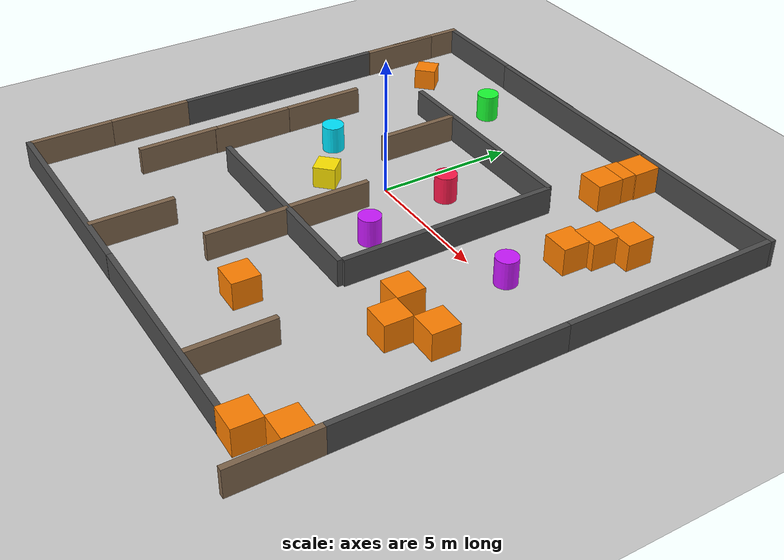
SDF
<sdf version='1.12'>
  <world name='empty'>
    <physics name='1ms' type='ignored'>
      <max_step_size>0.001</max_step_size>
      <real_time_factor>1</real_time_factor>
      <real_time_update_rate>1000</real_time_update_rate>
    </physics>
    <plugin name='gz::sim::systems::Physics' filename='gz-sim-physics-system'/>
    <plugin name='gz::sim::systems::UserCommands' filename='gz-sim-user-commands-system'/>
    <plugin name='gz::sim::systems::SceneBroadcaster' filename='gz-sim-scene-broadcaster-system'/>
    <plugin name='gz::sim::systems::Contact' filename='gz-sim-contact-system'/>
    <gravity>0 0 -9.8000000000000007</gravity>
    <magnetic_field>5.5644999999999998e-06 2.2875799999999999e-05 -4.2388400000000002e-05</magnetic_field>
    <atmosphere type='adiabatic'/>
    <scene>
      <ambient>0.400000006 0.400000006 0.400000006 1</ambient>
      <background>0.699999988 0.699999988 0.699999988 1</background>
      <shadows>true</shadows>
    </scene>
    <model name='ground_plane'>
      <static>true</static>
      <link name='link'>
        <collision name='collision'>
          <geometry>
            <plane>
              <normal>0 0 1</normal>
              <size>100 100</size>
            </plane>
          </geometry>
          <surface>
            <friction>
              <ode/>
            </friction>
            <bounce/>
            <contact/>
          </surface>
        </collision>
        <visual name='visual'>
          <geometry>
            <plane>
              <normal>0 0 1</normal>
              <size>100 100</size>
            </plane>
          </geometry>
          <material>
            <ambient>0.800000012 0.800000012 0.800000012 1</ambient>
            <diffuse>0.800000012 0.800000012 0.800000012 1</diffuse>
            <specular>0.800000012 0.800000012 0.800000012 1</specular>
          </material>
        </visual>
        <pose>0 0 0 0 0 0</pose>
        <inertial>
          <pose>0 0 0 0 0 0</pose>
          <mass>1</mass>
          <inertia>
            <ixx>1</ixx>
            <ixy>0</ixy>
            <ixz>0</ixz>
            <iyy>1</iyy>
            <iyz>0</iyz>
            <izz>1</izz>
          </inertia>
        </inertial>
        <enable_wind>false</enable_wind>
      </link>
      <pose>0 0 0 0 0 0</pose>
      <self_collide>false</self_collide>
    </model>
    <model name='wall_north'>
      <static>true</static>
      <pose>0 4 0.5 0 0 0</pose>
      <link name='link'>
        <collision name='collision'>
          <geometry>
            <box>
              <size>8 0.20000000000000001 1</size>
            </box>
          </geometry>
          <surface>
            <friction>
              <ode/>
            </friction>
            <bounce/>
            <contact/>
          </surface>
        </collision>
        <visual name='visual'>
          <geometry>
            <box>
              <size>8 0.20000000000000001 1</size>
            </box>
          </geometry>
          <material>
            <ambient>0.300000012 0.300000012 0.300000012 1</ambient>
            <diffuse>0.300000012 0.300000012 0.300000012 1</diffuse>
          </material>
        </visual>
        <pose>0 0 0 0 0 0</pose>
        <inertial>
          <pose>0 0 0 0 0 0</pose>
          <mass>1</mass>
          <inertia>
            <ixx>1</ixx>
            <ixy>0</ixy>
            <ixz>0</ixz>
            <iyy>1</iyy>
            <iyz>0</iyz>
            <izz>1</izz>
          </inertia>
        </inertial>
        <enable_wind>false</enable_wind>
      </link>
      <self_collide>false</self_collide>
    </model>
    <model name='wall_south'>
      <static>true</static>
      <pose>0 -4.0923056602478027 0.5 0 0 0</pose>
      <link name='link'>
        <collision name='collision'>
          <geometry>
            <box>
              <size>8 0.20000000000000001 1</size>
            </box>
          </geometry>
          <surface>
            <friction>
              <ode/>
            </friction>
            <bounce/>
            <contact/>
          </surface>
        </collision>
        <visual name='visual'>
          <geometry>
            <box>
              <size>8 0.20000000000000001 1</size>
            </box>
          </geometry>
          <material>
            <ambient>0.300000012 0.300000012 0.300000012 1</ambient>
            <diffuse>0.300000012 0.300000012 0.300000012 1</diffuse>
          </material>
        </visual>
        <pose>0 0 0 0 0 0</pose>
        <inertial>
          <pose>0 0 0 0 0 0</pose>
          <mass>1</mass>
          <inertia>
            <ixx>1</ixx>
            <ixy>0</ixy>
            <ixz>0</ixz>
            <iyy>1</iyy>
            <iyz>0</iyz>
            <izz>1</izz>
          </inertia>
        </inertial>
        <enable_wind>false</enable_wind>
      </link>
      <self_collide>false</self_collide>
    </model>
    <model name='wall_east'>
      <static>true</static>
      <pose>4 0 0.5 0 0 1.5708000000000009</pose>
      <link name='link'>
        <collision name='collision'>
          <geometry>
            <box>
              <size>8 0.20000000000000001 1</size>
            </box>
          </geometry>
          <surface>
            <friction>
              <ode/>
            </friction>
            <bounce/>
            <contact/>
          </surface>
        </collision>
        <visual name='visual'>
          <geometry>
            <box>
              <size>8 0.20000000000000001 1</size>
            </box>
          </geometry>
          <material>
            <ambient>0.300000012 0.300000012 0.300000012 1</ambient>
            <diffuse>0.300000012 0.300000012 0.300000012 1</diffuse>
          </material>
        </visual>
        <pose>0 0 0 0 0 0</pose>
        <inertial>
          <pose>0 0 0 0 0 0</pose>
          <mass>1</mass>
          <inertia>
            <ixx>1</ixx>
            <ixy>0</ixy>
            <ixz>0</ixz>
            <iyy>1</iyy>
            <iyz>0</iyz>
            <izz>1</izz>
          </inertia>
        </inertial>
        <enable_wind>false</enable_wind>
      </link>
      <self_collide>false</self_collide>
    </model>
    <model name='wall_west'>
      <static>true</static>
      <pose>-7.8738789558410645 -1.4367816220328677e-05 0.5 0 0 1.5708000357176291</pose>
      <link name='link'>
        <collision name='collision'>
          <geometry>
            <box>
              <size>8 0.20000000000000001 1</size>
            </box>
          </geometry>
          <surface>
            <friction>
              <ode/>
            </friction>
            <bounce/>
            <contact/>
          </surface>
        </collision>
        <visual name='visual'>
          <geometry>
            <box>
              <size>8 0.20000000000000001 1</size>
            </box>
          </geometry>
          <material>
            <ambient>0.300000012 0.300000012 0.300000012 1</ambient>
            <diffuse>0.300000012 0.300000012 0.300000012 1</diffuse>
          </material>
        </visual>
        <pose>0 0 0 0 0 0</pose>
        <inertial>
          <pose>0 0 0 0 0 0</pose>
          <mass>1</mass>
          <inertia>
            <ixx>1</ixx>
            <ixy>0</ixy>
            <ixz>0</ixz>
            <iyy>1</iyy>
            <iyz>0</iyz>
            <izz>1</izz>
          </inertia>
        </inertial>
        <enable_wind>false</enable_wind>
      </link>
      <self_collide>false</self_collide>
    </model>
    <model name='pillar_1'>
      <static>true</static>
      <pose>1.5 1.5 0.5 0 0 0</pose>
      <link name='link'>
        <collision name='collision'>
          <geometry>
            <cylinder>
              <radius>0.40000000000000002</radius>
              <length>1</length>
            </cylinder>
          </geometry>
          <surface>
            <friction>
              <ode/>
            </friction>
            <bounce/>
            <contact/>
          </surface>
        </collision>
        <visual name='visual'>
          <geometry>
            <cylinder>
              <radius>0.40000000000000002</radius>
              <length>1</length>
            </cylinder>
          </geometry>
          <material>
            <ambient>1 0.100000001 0.300000012 1</ambient>
            <diffuse>1 0.100000001 0.300000012 1</diffuse>
          </material>
        </visual>
        <pose>0 0 0 0 0 0</pose>
        <inertial>
          <pose>0 0 0 0 0 0</pose>
          <mass>1</mass>
          <inertia>
            <ixx>1</ixx>
            <ixy>0</ixy>
            <ixz>0</ixz>
            <iyy>1</iyy>
            <iyz>0</iyz>
            <izz>1</izz>
          </inertia>
        </inertial>
        <enable_wind>false</enable_wind>
      </link>
      <self_collide>false</self_collide>
    </model>
    <model name='box_2'>
      <static>true</static>
      <pose>-1.5 -1.5 0.40000000000000002 0 0 0.7854000000000001</pose>
      <link name='link'>
        <collision name='collision'>
          <geometry>
            <box>
              <size>0.80000000000000004 0.80000000000000004 0.80000000000000004</size>
            </box>
          </geometry>
          <surface>
            <friction>
              <ode/>
            </friction>
            <bounce/>
            <contact/>
          </surface>
        </collision>
        <visual name='visual'>
          <geometry>
            <box>
              <size>0.80000000000000004 0.80000000000000004 0.80000000000000004</size>
            </box>
          </geometry>
          <material>
            <ambient>1 0.899999976 0 1</ambient>
            <diffuse>1 0.899999976 0 1</diffuse>
          </material>
        </visual>
        <pose>0 0 0 0 0 0</pose>
        <inertial>
          <pose>0 0 0 0 0 0</pose>
          <mass>1</mass>
          <inertia>
            <ixx>1</ixx>
            <ixy>0</ixy>
            <ixz>0</ixz>
            <iyy>1</iyy>
            <iyz>0</iyz>
            <izz>1</izz>
          </inertia>
        </inertial>
        <enable_wind>false</enable_wind>
      </link>
      <self_collide>false</self_collide>
    </model>
    <model name='partition_wall'>
      <static>true</static>
      <pose>0.5 -2.5134696960449219 0.5 0 0 0</pose>
      <link name='link'>
        <collision name='collision'>
          <geometry>
            <box>
              <size>0.20000000000000001 3 1</size>
            </box>
          </geometry>
          <surface>
            <friction>
              <ode/>
            </friction>
            <bounce/>
            <contact/>
          </surface>
        </collision>
        <visual name='visual'>
          <geometry>
            <box>
              <size>0.20000000000000001 3 1</size>
            </box>
          </geometry>
          <material>
            <ambient>0.5 0.400000006 0.300000012 1</ambient>
            <diffuse>0.5 0.400000006 0.300000012 1</diffuse>
          </material>
        </visual>
        <pose>0 0 0 0 0 0</pose>
        <inertial>
          <pose>0 0 0 0 0 0</pose>
          <mass>1</mass>
          <inertia>
            <ixx>1</ixx>
            <ixy>0</ixy>
            <ixz>0</ixz>
            <iyy>1</iyy>
            <iyz>0</iyz>
            <izz>1</izz>
          </inertia>
        </inertial>
        <enable_wind>false</enable_wind>
      </link>
      <self_collide>false</self_collide>
    </model>
    <model name='partition_wall_1'>
      <static>true</static>
      <pose>-1.7605017748249381 2.4458552626237258 0.5 0 0 0</pose>
      <link name='link'>
        <collision name='collision'>
          <geometry>
            <box>
              <size>0.20000000000000001 3 1</size>
            </box>
          </geometry>
          <surface>
            <friction>
              <ode/>
            </friction>
            <bounce/>
            <contact/>
          </surface>
        </collision>
        <visual name='visual'>
          <geometry>
            <box>
              <size>0.20000000000000001 3 1</size>
            </box>
          </geometry>
          <material>
            <ambient>0.5 0.400000006 0.300000012 1</ambient>
            <diffuse>0.5 0.400000006 0.300000012 1</diffuse>
          </material>
        </visual>
        <pose>0 0 0 0 0 0</pose>
        <inertial>
          <pose>0 0 0 0 0 0</pose>
          <mass>1</mass>
          <inertia>
            <ixx>1</ixx>
            <ixy>0</ixy>
            <ixz>0</ixz>
            <iyy>1</iyy>
            <iyz>0</iyz>
            <izz>1</izz>
          </inertia>
        </inertial>
        <enable_wind>false</enable_wind>
      </link>
      <self_collide>false</self_collide>
    </model>
    <model name='partition_wall_2'>
      <static>true</static>
      <pose>-5.4336396356057675 -2.4803187721044377 0.5 0 0 0</pose>
      <link name='link'>
        <collision name='collision'>
          <geometry>
            <box>
              <size>0.20000000000000001 3 1</size>
            </box>
          </geometry>
          <surface>
            <friction>
              <ode/>
            </friction>
            <bounce/>
            <contact/>
          </surface>
        </collision>
        <visual name='visual'>
          <geometry>
            <box>
              <size>0.20000000000000001 3 1</size>
            </box>
          </geometry>
          <material>
            <ambient>0.5 0.400000006 0.300000012 1</ambient>
            <diffuse>0.5 0.400000006 0.300000012 1</diffuse>
          </material>
        </visual>
        <pose>0 0 0 0 0 0</pose>
        <inertial>
          <pose>0 0 0 0 0 0</pose>
          <mass>1</mass>
          <inertia>
            <ixx>1</ixx>
            <ixy>0</ixy>
            <ixz>0</ixz>
            <iyy>1</iyy>
            <iyz>0</iyz>
            <izz>1</izz>
          </inertia>
        </inertial>
        <enable_wind>false</enable_wind>
      </link>
      <self_collide>false</self_collide>
    </model>
    <model name='partition_wall_3'>
      <static>true</static>
      <pose>-5.4298612976178502 0.52239225409413659 0.5 0 0 0</pose>
      <link name='link'>
        <collision name='collision'>
          <geometry>
            <box>
              <size>0.20000000000000001 3 1</size>
            </box>
          </geometry>
          <surface>
            <friction>
              <ode/>
            </friction>
            <bounce/>
            <contact/>
          </surface>
        </collision>
        <visual name='visual'>
          <geometry>
            <box>
              <size>0.20000000000000001 3 1</size>
            </box>
          </geometry>
          <material>
            <ambient>0.5 0.400000006 0.300000012 1</ambient>
            <diffuse>0.5 0.400000006 0.300000012 1</diffuse>
          </material>
        </visual>
        <pose>0 0 0 0 0 0</pose>
        <inertial>
          <pose>0 0 0 0 0 0</pose>
          <mass>1</mass>
          <inertia>
            <ixx>1</ixx>
            <ixy>0</ixy>
            <ixz>0</ixz>
            <iyy>1</iyy>
            <iyz>0</iyz>
            <izz>1</izz>
          </inertia>
        </inertial>
        <enable_wind>false</enable_wind>
      </link>
      <self_collide>false</self_collide>
    </model>
    <model name='wall_north_1'>
      <static>true</static>
      <pose>-0.0087421660810775847 8.0810803933114244 0.5 0 0 0</pose>
      <link name='link'>
        <collision name='collision'>
          <geometry>
            <box>
              <size>8 0.20000000000000001 1</size>
            </box>
          </geometry>
          <surface>
            <friction>
              <ode/>
            </friction>
            <bounce/>
            <contact/>
          </surface>
        </collision>
        <visual name='visual'>
          <geometry>
            <box>
              <size>8 0.20000000000000001 1</size>
            </box>
          </geometry>
          <material>
            <ambient>0.300000012 0.300000012 0.300000012 1</ambient>
            <diffuse>0.300000012 0.300000012 0.300000012 1</diffuse>
          </material>
        </visual>
        <pose>0 0 0 0 0 0</pose>
        <inertial>
          <pose>0 0 0 0 0 0</pose>
          <mass>1</mass>
          <inertia>
            <ixx>1</ixx>
            <ixy>0</ixy>
            <ixz>0</ixz>
            <iyy>1</iyy>
            <iyz>0</iyz>
            <izz>1</izz>
          </inertia>
        </inertial>
        <enable_wind>false</enable_wind>
      </link>
      <self_collide>false</self_collide>
    </model>
    <model name='box_2_1'>
      <static>true</static>
      <pose>-5.9091497818468603 5.5349610578667976 0.40000000596046448 0 0 0.78540004313744605</pose>
      <link name='link'>
        <collision name='collision'>
          <geometry>
            <box>
              <size>0.80000000000000004 0.80000000000000004 0.80000000000000004</size>
            </box>
          </geometry>
          <surface>
            <friction>
              <ode/>
            </friction>
            <bounce/>
            <contact/>
          </surface>
        </collision>
        <visual name='visual'>
          <geometry>
            <box>
              <size>0.80000000000000004 0.80000000000000004 0.80000000000000004</size>
            </box>
          </geometry>
          <material>
            <ambient>1 0.400000006 0 1</ambient>
            <diffuse>1 0.5 0 1</diffuse>
          </material>
        </visual>
        <pose>0 0 0 0 0 0</pose>
        <inertial>
          <pose>0 0 0 0 0 0</pose>
          <mass>1</mass>
          <inertia>
            <ixx>1</ixx>
            <ixy>0</ixy>
            <ixz>0</ixz>
            <iyy>1</iyy>
            <iyz>0</iyz>
            <izz>1</izz>
          </inertia>
        </inertial>
        <enable_wind>false</enable_wind>
      </link>
      <self_collide>false</self_collide>
    </model>
    <model name='pillar_1_1'>
      <static>true</static>
      <pose>-3.4697230367513896 -0.14226259319726964 0.5 0 0 0</pose>
      <link name='link'>
        <collision name='collision'>
          <geometry>
            <cylinder>
              <radius>0.40000000000000002</radius>
              <length>1</length>
            </cylinder>
          </geometry>
          <surface>
            <friction>
              <ode/>
            </friction>
            <bounce/>
            <contact/>
          </surface>
        </collision>
        <visual name='visual'>
          <geometry>
            <cylinder>
              <radius>0.40000000000000002</radius>
              <length>1</length>
            </cylinder>
          </geometry>
          <material>
            <ambient>0 0.800000012 1 1</ambient>
            <diffuse>0 0.899999976 1 1</diffuse>
          </material>
        </visual>
        <pose>0 0 0 0 0 0</pose>
        <inertial>
          <pose>0 0 0 0 0 0</pose>
          <mass>1</mass>
          <inertia>
            <ixx>1</ixx>
            <ixy>0</ixy>
            <ixz>0</ixz>
            <iyy>1</iyy>
            <iyz>0</iyz>
            <izz>1</izz>
          </inertia>
        </inertial>
        <enable_wind>false</enable_wind>
      </link>
      <self_collide>false</self_collide>
    </model>
    <model name='pillar_1_2'>
      <static>true</static>
      <pose>2.3552812401042456 -2.0403482321892001 0.5 0 0 0</pose>
      <link name='link'>
        <collision name='collision'>
          <geometry>
            <cylinder>
              <radius>0.40000000000000002</radius>
              <length>1</length>
            </cylinder>
          </geometry>
          <surface>
            <friction>
              <ode/>
            </friction>
            <bounce/>
            <contact/>
          </surface>
        </collision>
        <visual name='visual'>
          <geometry>
            <cylinder>
              <radius>0.40000000000000002</radius>
              <length>1</length>
            </cylinder>
          </geometry>
          <material>
            <ambient>0.699999988 0.100000001 1 1</ambient>
            <diffuse>0.800000012 0.100000001 1 1</diffuse>
          </material>
        </visual>
        <pose>0 0 0 0 0 0</pose>
        <inertial>
          <pose>0 0 0 0 0 0</pose>
          <mass>1</mass>
          <inertia>
            <ixx>1</ixx>
            <ixy>0</ixy>
            <ixz>0</ixz>
            <iyy>1</iyy>
            <iyz>0</iyz>
            <izz>1</izz>
          </inertia>
        </inertial>
        <enable_wind>false</enable_wind>
      </link>
      <self_collide>false</self_collide>
    </model>
    <model name='pillar_1_3'>
      <static>true</static>
      <pose>-2.4846503666738551 6.0894078433106724 0.5 0 0 0</pose>
      <link name='link'>
        <collision name='collision'>
          <geometry>
            <cylinder>
              <radius>0.40000000000000002</radius>
              <length>1</length>
            </cylinder>
          </geometry>
          <surface>
            <friction>
              <ode/>
            </friction>
            <bounce/>
            <contact/>
          </surface>
        </collision>
        <visual name='visual'>
          <geometry>
            <cylinder>
              <radius>0.40000000000000002</radius>
              <length>1</length>
            </cylinder>
          </geometry>
          <material>
            <ambient>0.100000001 1 0.200000003 1</ambient>
            <diffuse>0.100000001 1 0.200000003 1</diffuse>
          </material>
        </visual>
        <pose>0 0 0 0 0 0</pose>
        <inertial>
          <pose>0 0 0 0 0 0</pose>
          <mass>1</mass>
          <inertia>
            <ixx>1</ixx>
            <ixy>0</ixy>
            <ixz>0</ixz>
            <iyy>1</iyy>
            <iyz>0</iyz>
            <izz>1</izz>
          </inertia>
        </inertial>
        <enable_wind>false</enable_wind>
      </link>
      <self_collide>false</self_collide>
    </model>
    <model name='wall_north_1_1'>
      <static>true</static>
      <pose>-3.9489494225934276 8.0993849353862419 0.5 0 0 0</pose>
      <link name='link'>
        <collision name='collision'>
          <geometry>
            <box>
              <size>8 0.20000000000000001 1</size>
            </box>
          </geometry>
          <surface>
            <friction>
              <ode/>
            </friction>
            <bounce/>
            <contact/>
          </surface>
        </collision>
        <visual name='visual'>
          <geometry>
            <box>
              <size>8 0.20000000000000001 1</size>
            </box>
          </geometry>
          <material>
            <ambient>0.300000012 0.300000012 0.300000012 1</ambient>
            <diffuse>0.300000012 0.300000012 0.300000012 1</diffuse>
          </material>
        </visual>
        <pose>0 0 0 0 0 0</pose>
        <inertial>
          <pose>0 0 0 0 0 0</pose>
          <mass>1</mass>
          <inertia>
            <ixx>1</ixx>
            <ixy>0</ixy>
            <ixz>0</ixz>
            <iyy>1</iyy>
            <iyz>0</iyz>
            <izz>1</izz>
          </inertia>
        </inertial>
        <enable_wind>false</enable_wind>
      </link>
      <self_collide>false</self_collide>
    </model>
    <model name='partition_wall_1_2'>
      <static>true</static>
      <pose>-7.8597061718532277 5.4637515614569221 0.5 0 0 0</pose>
      <link name='link'>
        <collision name='collision'>
          <geometry>
            <box>
              <size>0.20000000000000001 3 1</size>
            </box>
          </geometry>
          <surface>
            <friction>
              <ode/>
            </friction>
            <bounce/>
            <contact/>
          </surface>
        </collision>
        <visual name='visual'>
          <geometry>
            <box>
              <size>0.20000000000000001 3 1</size>
            </box>
          </geometry>
          <material>
            <ambient>0.5 0.400000006 0.300000012 1</ambient>
            <diffuse>0.5 0.400000006 0.300000012 1</diffuse>
          </material>
        </visual>
        <pose>0 0 0 0 0 0</pose>
        <inertial>
          <pose>0 0 0 0 0 0</pose>
          <mass>1</mass>
          <inertia>
            <ixx>1</ixx>
            <ixy>0</ixy>
            <ixz>0</ixz>
            <iyy>1</iyy>
            <iyz>0</iyz>
            <izz>1</izz>
          </inertia>
        </inertial>
        <enable_wind>false</enable_wind>
      </link>
      <self_collide>false</self_collide>
    </model>
    <model name='partition_wall_1_3'>
      <static>true</static>
      <pose>-7.8659088222401223 6.7102887912161133 0.5 0 0 0</pose>
      <link name='link'>
        <collision name='collision'>
          <geometry>
            <box>
              <size>0.20000000000000001 3 1</size>
            </box>
          </geometry>
          <surface>
            <friction>
              <ode/>
            </friction>
            <bounce/>
            <contact/>
          </surface>
        </collision>
        <visual name='visual'>
          <geometry>
            <box>
              <size>0.20000000000000001 3 1</size>
            </box>
          </geometry>
          <material>
            <ambient>0.5 0.400000006 0.300000012 1</ambient>
            <diffuse>0.5 0.400000006 0.300000012 1</diffuse>
          </material>
        </visual>
        <pose>0 0 0 0 0 0</pose>
        <inertial>
          <pose>0 0 0 0 0 0</pose>
          <mass>1</mass>
          <inertia>
            <ixx>1</ixx>
            <ixy>0</ixy>
            <ixz>0</ixz>
            <iyy>1</iyy>
            <iyz>0</iyz>
            <izz>1</izz>
          </inertia>
        </inertial>
        <enable_wind>false</enable_wind>
      </link>
      <self_collide>false</self_collide>
    </model>
    <model name='wall_west_1'>
      <static>true</static>
      <pose>10.063234967953035 4.0082873052952754 0.5 0 0 1.5707999672671704</pose>
      <link name='link'>
        <collision name='collision'>
          <geometry>
            <box>
              <size>8 0.20000000000000001 1</size>
            </box>
          </geometry>
          <surface>
            <friction>
              <ode/>
            </friction>
            <bounce/>
            <contact/>
          </surface>
        </collision>
        <visual name='visual'>
          <geometry>
            <box>
              <size>8 0.20000000000000001 1</size>
            </box>
          </geometry>
          <material>
            <ambient>0.300000012 0.300000012 0.300000012 1</ambient>
            <diffuse>0.300000012 0.300000012 0.300000012 1</diffuse>
          </material>
        </visual>
        <pose>0 0 0 0 0 0</pose>
        <inertial>
          <pose>0 0 0 0 0 0</pose>
          <mass>1</mass>
          <inertia>
            <ixx>1</ixx>
            <ixy>0</ixy>
            <ixz>0</ixz>
            <iyy>1</iyy>
            <iyz>0</iyz>
            <izz>1</izz>
          </inertia>
        </inertial>
        <enable_wind>false</enable_wind>
      </link>
      <self_collide>false</self_collide>
    </model>
    <model name='wall_west_2'>
      <static>true</static>
      <pose>10.062877140437122 -3.9920211228117859 0.5 0 0 1.5707999672671704</pose>
      <link name='link'>
        <collision name='collision'>
          <geometry>
            <box>
              <size>8 0.20000000000000001 1</size>
            </box>
          </geometry>
          <surface>
            <friction>
              <ode/>
            </friction>
            <bounce/>
            <contact/>
          </surface>
        </collision>
        <visual name='visual'>
          <geometry>
            <box>
              <size>8 0.20000000000000001 1</size>
            </box>
          </geometry>
          <material>
            <ambient>0.300000012 0.300000012 0.300000012 1</ambient>
            <diffuse>0.300000012 0.300000012 0.300000012 1</diffuse>
          </material>
        </visual>
        <pose>0 0 0 0 0 0</pose>
        <inertial>
          <pose>0 0 0 0 0 0</pose>
          <mass>1</mass>
          <inertia>
            <ixx>1</ixx>
            <ixy>0</ixy>
            <ixz>0</ixz>
            <iyy>1</iyy>
            <iyz>0</iyz>
            <izz>1</izz>
          </inertia>
        </inertial>
        <enable_wind>false</enable_wind>
      </link>
      <self_collide>false</self_collide>
    </model>
    <model name='partition_wall_4'>
      <static>true</static>
      <pose>10.063465716417824 -9.4837706592573312 0.5 0 0 0</pose>
      <link name='link'>
        <collision name='collision'>
          <geometry>
            <box>
              <size>0.20000000000000001 3 1</size>
            </box>
          </geometry>
          <surface>
            <friction>
              <ode/>
            </friction>
            <bounce/>
            <contact/>
          </surface>
        </collision>
        <visual name='visual'>
          <geometry>
            <box>
              <size>0.20000000000000001 3 1</size>
            </box>
          </geometry>
          <material>
            <ambient>0.5 0.400000006 0.300000012 1</ambient>
            <diffuse>0.5 0.400000006 0.300000012 1</diffuse>
          </material>
        </visual>
        <pose>0 0 0 0 0 0</pose>
        <inertial>
          <pose>0 0 0 0 0 0</pose>
          <mass>1</mass>
          <inertia>
            <ixx>1</ixx>
            <ixy>0</ixy>
            <ixz>0</ixz>
            <iyy>1</iyy>
            <iyz>0</iyz>
            <izz>1</izz>
          </inertia>
        </inertial>
        <enable_wind>false</enable_wind>
      </link>
      <self_collide>false</self_collide>
    </model>
    <model name='partition_wall_3_1'>
      <static>true</static>
      <pose>-7.8744588621704628 -5.4999651504463927 0.5 0 0 0</pose>
      <link name='link'>
        <collision name='collision'>
          <geometry>
            <box>
              <size>0.20000000000000001 3 1</size>
            </box>
          </geometry>
          <surface>
            <friction>
              <ode/>
            </friction>
            <bounce/>
            <contact/>
          </surface>
        </collision>
        <visual name='visual'>
          <geometry>
            <box>
              <size>0.20000000000000001 3 1</size>
            </box>
          </geometry>
          <material>
            <ambient>0.5 0.400000006 0.300000012 1</ambient>
            <diffuse>0.5 0.400000006 0.300000012 1</diffuse>
          </material>
        </visual>
        <pose>0 0 0 0 0 0</pose>
        <inertial>
          <pose>0 0 0 0 0 0</pose>
          <mass>1</mass>
          <inertia>
            <ixx>1</ixx>
            <ixy>0</ixy>
            <ixz>0</ixz>
            <iyy>1</iyy>
            <iyz>0</iyz>
            <izz>1</izz>
          </inertia>
        </inertial>
        <enable_wind>false</enable_wind>
      </link>
      <self_collide>false</self_collide>
    </model>
    <model name='partition_wall_3_1_1'>
      <static>true</static>
      <pose>-7.8752750252053509 -8.4908428544417003 0.5 0 0 0</pose>
      <link name='link'>
        <collision name='collision'>
          <geometry>
            <box>
              <size>0.20000000000000001 3 1</size>
            </box>
          </geometry>
          <surface>
            <friction>
              <ode/>
            </friction>
            <bounce/>
            <contact/>
          </surface>
        </collision>
        <visual name='visual'>
          <geometry>
            <box>
              <size>0.20000000000000001 3 1</size>
            </box>
          </geometry>
          <material>
            <ambient>0.5 0.400000006 0.300000012 1</ambient>
            <diffuse>0.5 0.400000006 0.300000012 1</diffuse>
          </material>
        </visual>
        <pose>0 0 0 0 0 0</pose>
        <inertial>
          <pose>0 0 0 0 0 0</pose>
          <mass>1</mass>
          <inertia>
            <ixx>1</ixx>
            <ixy>0</ixy>
            <ixz>0</ixz>
            <iyy>1</iyy>
            <iyz>0</iyz>
            <izz>1</izz>
          </inertia>
        </inertial>
        <enable_wind>false</enable_wind>
      </link>
      <self_collide>false</self_collide>
    </model>
    <model name='wall_north_1_2'>
      <static>true</static>
      <pose>6.1594066575123936 8.0949844052892281 0.5 0 0 0</pose>
      <link name='link'>
        <collision name='collision'>
          <geometry>
            <box>
              <size>8 0.20000000000000001 1</size>
            </box>
          </geometry>
          <surface>
            <friction>
              <ode/>
            </friction>
            <bounce/>
            <contact/>
          </surface>
        </collision>
        <visual name='visual'>
          <geometry>
            <box>
              <size>8 0.20000000000000001 1</size>
            </box>
          </geometry>
          <material>
            <ambient>0.300000012 0.300000012 0.300000012 1</ambient>
            <diffuse>0.300000012 0.300000012 0.300000012 1</diffuse>
          </material>
        </visual>
        <pose>0 0 0 0 0 0</pose>
        <inertial>
          <pose>0 0 0 0 0 0</pose>
          <mass>1</mass>
          <inertia>
            <ixx>1</ixx>
            <ixy>0</ixy>
            <ixz>0</ixz>
            <iyy>1</iyy>
            <iyz>0</iyz>
            <izz>1</izz>
          </inertia>
        </inertial>
        <enable_wind>false</enable_wind>
      </link>
      <self_collide>false</self_collide>
    </model>
    <model name='wall_north_1_3'>
      <static>true</static>
      <pose>-3.9764610413267483 -10.060767628289007 0.5 0 0 0</pose>
      <link name='link'>
        <collision name='collision'>
          <geometry>
            <box>
              <size>8 0.20000000000000001 1</size>
            </box>
          </geometry>
          <surface>
            <friction>
              <ode/>
            </friction>
            <bounce/>
            <contact/>
          </surface>
        </collision>
        <visual name='visual'>
          <geometry>
            <box>
              <size>8 0.20000000000000001 1</size>
            </box>
          </geometry>
          <material>
            <ambient>0.300000012 0.300000012 0.300000012 1</ambient>
            <diffuse>0.300000012 0.300000012 0.300000012 1</diffuse>
          </material>
        </visual>
        <pose>0 0 0 0 0 0</pose>
        <inertial>
          <pose>0 0 0 0 0 0</pose>
          <mass>1</mass>
          <inertia>
            <ixx>1</ixx>
            <ixy>0</ixy>
            <ixz>0</ixz>
            <iyy>1</iyy>
            <iyz>0</iyz>
            <izz>1</izz>
          </inertia>
        </inertial>
        <enable_wind>false</enable_wind>
      </link>
      <self_collide>false</self_collide>
    </model>
    <model name='wall_north_1_4'>
      <static>true</static>
      <pose>3.983556523876886 -10.057257403976116 0.5 0 0 0</pose>
      <link name='link'>
        <collision name='collision'>
          <geometry>
            <box>
              <size>8 0.20000000000000001 1</size>
            </box>
          </geometry>
          <surface>
            <friction>
              <ode/>
            </friction>
            <bounce/>
            <contact/>
          </surface>
        </collision>
        <visual name='visual'>
          <geometry>
            <box>
              <size>8 0.20000000000000001 1</size>
            </box>
          </geometry>
          <material>
            <ambient>0.300000012 0.300000012 0.300000012 1</ambient>
            <diffuse>0.300000012 0.300000012 0.300000012 1</diffuse>
          </material>
        </visual>
        <pose>0 0 0 0 0 0</pose>
        <inertial>
          <pose>0 0 0 0 0 0</pose>
          <mass>1</mass>
          <inertia>
            <ixx>1</ixx>
            <ixy>0</ixy>
            <ixz>0</ixz>
            <iyy>1</iyy>
            <iyz>0</iyz>
            <izz>1</izz>
          </inertia>
        </inertial>
        <enable_wind>false</enable_wind>
      </link>
      <self_collide>false</self_collide>
    </model>
    <model name='box_1'>
      <pose>8.4934568868117264 -9.6666023090226592 0.49999932239323125 1.103575931764114e-07 1.2014148010797463e-06 -0.019981894500795912</pose>
      <link name='box_link'>
        <inertial>
          <inertia>
            <ixx>0.16666</ixx>
            <ixy>0</ixy>
            <ixz>0</ixz>
            <iyy>0.16666</iyy>
            <iyz>0</iyz>
            <izz>0.16666</izz>
          </inertia>
          <mass>1</mass>
          <pose>0 0 0 0 0 0</pose>
        </inertial>
        <collision name='box_collision'>
          <geometry>
            <box>
              <size>1 1 1</size>
            </box>
          </geometry>
          <surface>
            <friction>
              <ode/>
            </friction>
            <bounce/>
            <contact/>
          </surface>
        </collision>
        <visual name='box_visual'>
          <geometry>
            <box>
              <size>1 1 1</size>
            </box>
          </geometry>
          <material>
            <ambient>1 0.400000006 0 1</ambient>
            <diffuse>1 0.5 0 1</diffuse>
            <specular>0.800000012 0.800000012 0.800000012 1</specular>
          </material>
        </visual>
        <pose>0 0 0 0 0 0</pose>
        <enable_wind>false</enable_wind>
      </link>
      <static>false</static>
      <self_collide>false</self_collide>
    </model>
    <model name='box_3'>
      <pose>9.4554703408371328 -8.6836938439860205 0.50000040968274961 -1.2191563278251257e-06 -1.1999867227350878e-07 -0.01612169630967962</pose>
      <link name='box_link'>
        <inertial>
          <inertia>
            <ixx>0.16666</ixx>
            <ixy>0</ixy>
            <ixz>0</ixz>
            <iyy>0.16666</iyy>
            <iyz>0</iyz>
            <izz>0.16666</izz>
          </inertia>
          <mass>1</mass>
          <pose>0 0 0 0 0 0</pose>
        </inertial>
        <collision name='box_collision'>
          <geometry>
            <box>
              <size>1 1 1</size>
            </box>
          </geometry>
          <surface>
            <friction>
              <ode/>
            </friction>
            <bounce/>
            <contact/>
          </surface>
        </collision>
        <visual name='box_visual'>
          <geometry>
            <box>
              <size>1 1 1</size>
            </box>
          </geometry>
          <material>
            <ambient>1 0.400000006 0 1</ambient>
            <diffuse>1 0.5 0 1</diffuse>
            <specular>0.800000012 0.800000012 0.800000012 1</specular>
          </material>
        </visual>
        <pose>0 0 0 0 0 0</pose>
        <enable_wind>false</enable_wind>
      </link>
      <static>false</static>
      <self_collide>false</self_collide>
    </model>
    <model name='pillar_1_2_2'>
      <static>true</static>
      <pose>6.4964711916418452 0.4388672629706124 0.5 0 0 0</pose>
      <link name='link'>
        <collision name='collision'>
          <geometry>
            <cylinder>
              <radius>0.40000000000000002</radius>
              <length>1</length>
            </cylinder>
          </geometry>
          <surface>
            <friction>
              <ode/>
            </friction>
            <bounce/>
            <contact/>
          </surface>
        </collision>
        <visual name='visual'>
          <geometry>
            <cylinder>
              <radius>0.40000000000000002</radius>
              <length>1</length>
            </cylinder>
          </geometry>
          <material>
            <ambient>0.699999988 0.100000001 1 1</ambient>
            <diffuse>0.800000012 0.100000001 1 1</diffuse>
          </material>
        </visual>
        <pose>0 0 0 0 0 0</pose>
        <inertial>
          <pose>0 0 0 0 0 0</pose>
          <mass>1</mass>
          <inertia>
            <ixx>1</ixx>
            <ixy>0</ixy>
            <ixz>0</ixz>
            <iyy>1</iyy>
            <iyz>0</iyz>
            <izz>1</izz>
          </inertia>
        </inertial>
        <enable_wind>false</enable_wind>
      </link>
      <self_collide>false</self_collide>
    </model>
    <model name='partition_wall_6'>
      <static>true</static>
      <pose>-1.9077272410964934 -8.5474148304904869 0.5 0 0 0</pose>
      <link name='link'>
        <collision name='collision'>
          <geometry>
            <box>
              <size>0.20000000000000001 3 1</size>
            </box>
          </geometry>
          <surface>
            <friction>
              <ode/>
            </friction>
            <bounce/>
            <contact/>
          </surface>
        </collision>
        <visual name='visual'>
          <geometry>
            <box>
              <size>0.20000000000000001 3 1</size>
            </box>
          </geometry>
          <material>
            <ambient>0.5 0.400000006 0.300000012 1</ambient>
            <diffuse>0.5 0.400000006 0.300000012 1</diffuse>
          </material>
        </visual>
        <pose>0 0 0 0 0 0</pose>
        <inertial>
          <pose>0 0 0 0 0 0</pose>
          <mass>1</mass>
          <inertia>
            <ixx>1</ixx>
            <ixy>0</ixy>
            <ixz>0</ixz>
            <iyy>1</iyy>
            <iyz>0</iyz>
            <izz>1</izz>
          </inertia>
        </inertial>
        <enable_wind>false</enable_wind>
      </link>
      <self_collide>false</self_collide>
    </model>
    <model name='partition_wall_6_1'>
      <static>true</static>
      <pose>0.54305467894528547 -5.5864176722075216 0.5 0 0 0</pose>
      <link name='link'>
        <collision name='collision'>
          <geometry>
            <box>
              <size>0.20000000000000001 3 1</size>
            </box>
          </geometry>
          <surface>
            <friction>
              <ode/>
            </friction>
            <bounce/>
            <contact/>
          </surface>
        </collision>
        <visual name='visual'>
          <geometry>
            <box>
              <size>0.20000000000000001 3 1</size>
            </box>
          </geometry>
          <material>
            <ambient>0.5 0.400000006 0.300000012 1</ambient>
            <diffuse>0.5 0.400000006 0.300000012 1</diffuse>
          </material>
        </visual>
        <pose>0 0 0 0 0 0</pose>
        <inertial>
          <pose>0 0 0 0 0 0</pose>
          <mass>1</mass>
          <inertia>
            <ixx>1</ixx>
            <ixy>0</ixy>
            <ixz>0</ixz>
            <iyy>1</iyy>
            <iyz>0</iyz>
            <izz>1</izz>
          </inertia>
        </inertial>
        <enable_wind>false</enable_wind>
      </link>
      <self_collide>false</self_collide>
    </model>
    <model name='partition_wall_6_2'>
      <static>true</static>
      <pose>5.4665289766488616 -8.4677422088562082 0.5 0 0 0</pose>
      <link name='link'>
        <collision name='collision'>
          <geometry>
            <box>
              <size>0.20000000000000001 3 1</size>
            </box>
          </geometry>
          <surface>
            <friction>
              <ode/>
            </friction>
            <bounce/>
            <contact/>
          </surface>
        </collision>
        <visual name='visual'>
          <geometry>
            <box>
              <size>0.20000000000000001 3 1</size>
            </box>
          </geometry>
          <material>
            <ambient>0.5 0.400000006 0.300000012 1</ambient>
            <diffuse>0.5 0.400000006 0.300000012 1</diffuse>
          </material>
        </visual>
        <pose>0 0 0 0 0 0</pose>
        <inertial>
          <pose>0 0 0 0 0 0</pose>
          <mass>1</mass>
          <inertia>
            <ixx>1</ixx>
            <ixy>0</ixy>
            <ixz>0</ixz>
            <iyy>1</iyy>
            <iyz>0</iyz>
            <izz>1</izz>
          </inertia>
        </inertial>
        <enable_wind>false</enable_wind>
      </link>
      <self_collide>false</self_collide>
    </model>
    <model name='box_3_1'>
      <pose>4.4525179562258348 7.5090876411327958 0.50027464744511307 -0.00031759055770765531 0.00023181859622226856 -0.012905601311087001</pose>
      <link name='box_link'>
        <inertial>
          <inertia>
            <ixx>0.16666</ixx>
            <ixy>0</ixy>
            <ixz>0</ixz>
            <iyy>0.16666</iyy>
            <iyz>0</iyz>
            <izz>0.16666</izz>
          </inertia>
          <mass>1</mass>
          <pose>0 0 0 0 0 0</pose>
        </inertial>
        <collision name='box_collision'>
          <geometry>
            <box>
              <size>1 1 1</size>
            </box>
          </geometry>
          <surface>
            <friction>
              <ode/>
            </friction>
            <bounce/>
            <contact/>
          </surface>
        </collision>
        <visual name='box_visual'>
          <geometry>
            <box>
              <size>1 1 1</size>
            </box>
          </geometry>
          <material>
            <ambient>1 0.400000006 0 1</ambient>
            <diffuse>1 0.5 0 1</diffuse>
            <specular>0.800000012 0.800000012 0.800000012 1</specular>
          </material>
        </visual>
        <pose>0 0 0 0 0 0</pose>
        <enable_wind>false</enable_wind>
      </link>
      <static>false</static>
      <self_collide>false</self_collide>
    </model>
    <model name='box_3_2'>
      <pose>4.3970550649812505 6.5097949819133616 0.49999552810608017 8.5669770111879973e-06 -1.5450671925583117e-07 -0.013142525046089109</pose>
      <link name='box_link'>
        <inertial>
          <inertia>
            <ixx>0.16666</ixx>
            <ixy>0</ixy>
            <ixz>0</ixz>
            <iyy>0.16666</iyy>
            <iyz>0</iyz>
            <izz>0.16666</izz>
          </inertia>
          <mass>1</mass>
          <pose>0 0 0 0 0 0</pose>
        </inertial>
        <collision name='box_collision'>
          <geometry>
            <box>
              <size>1 1 1</size>
            </box>
          </geometry>
          <surface>
            <friction>
              <ode/>
            </friction>
            <bounce/>
            <contact/>
          </surface>
        </collision>
        <visual name='box_visual'>
          <geometry>
            <box>
              <size>1 1 1</size>
            </box>
          </geometry>
          <material>
            <ambient>1 0.400000006 0 1</ambient>
            <diffuse>1 0.5 0 1</diffuse>
            <specular>0.800000012 0.800000012 0.800000012 1</specular>
          </material>
        </visual>
        <pose>0 0 0 0 0 0</pose>
        <enable_wind>false</enable_wind>
      </link>
      <static>false</static>
      <self_collide>false</self_collide>
    </model>
    <model name='box_3_3'>
      <pose>4.3953434151474946 5.952222741825433 0.50023723939679399 0.00048382416186848156 6.9542740682276333e-06 -0.012425445877738906</pose>
      <link name='box_link'>
        <inertial>
          <inertia>
            <ixx>0.16666</ixx>
            <ixy>0</ixy>
            <ixz>0</ixz>
            <iyy>0.16666</iyy>
            <iyz>0</iyz>
            <izz>0.16666</izz>
          </inertia>
          <mass>1</mass>
          <pose>0 0 0 0 0 0</pose>
        </inertial>
        <collision name='box_collision'>
          <geometry>
            <box>
              <size>1 1 1</size>
            </box>
          </geometry>
          <surface>
            <friction>
              <ode/>
            </friction>
            <bounce/>
            <contact/>
          </surface>
        </collision>
        <visual name='box_visual'>
          <geometry>
            <box>
              <size>1 1 1</size>
            </box>
          </geometry>
          <material>
            <ambient>1 0.400000006 0 1</ambient>
            <diffuse>1 0.5 0 1</diffuse>
            <specular>0.800000012 0.800000012 0.800000012 1</specular>
          </material>
        </visual>
        <pose>0 0 0 0 0 0</pose>
        <enable_wind>false</enable_wind>
      </link>
      <static>false</static>
      <self_collide>false</self_collide>
    </model>
    <model name='box_3_4'>
      <pose>7.5315738050111696 4.5397540437083652 0.49999999018929481 -1.9552975312689619e-08 1.486735088370632e-10 -0.016092168690810482</pose>
      <link name='box_link'>
        <inertial>
          <inertia>
            <ixx>0.16666</ixx>
            <ixy>0</ixy>
            <ixz>0</ixz>
            <iyy>0.16666</iyy>
            <iyz>0</iyz>
            <izz>0.16666</izz>
          </inertia>
          <mass>1</mass>
          <pose>0 0 0 0 0 0</pose>
        </inertial>
        <collision name='box_collision'>
          <geometry>
            <box>
              <size>1 1 1</size>
            </box>
          </geometry>
          <surface>
            <friction>
              <ode/>
            </friction>
            <bounce/>
            <contact/>
          </surface>
        </collision>
        <visual name='box_visual'>
          <geometry>
            <box>
              <size>1 1 1</size>
            </box>
          </geometry>
          <material>
            <ambient>1 0.400000006 0 1</ambient>
            <diffuse>1 0.5 0 1</diffuse>
            <specular>0.800000012 0.800000012 0.800000012 1</specular>
          </material>
        </visual>
        <pose>0 0 0 0 0 0</pose>
        <enable_wind>false</enable_wind>
      </link>
      <static>false</static>
      <self_collide>false</self_collide>
    </model>
    <model name='box_3_5'>
      <pose>6.9486264982042032 3.6111804782870487 0.49999998860528921 -9.0485252069526033e-09 -2.8898261261854087e-09 -0.016097193389062806</pose>
      <link name='box_link'>
        <inertial>
          <inertia>
            <ixx>0.16666</ixx>
            <ixy>0</ixy>
            <ixz>0</ixz>
            <iyy>0.16666</iyy>
            <iyz>0</iyz>
            <izz>0.16666</izz>
          </inertia>
          <mass>1</mass>
          <pose>0 0 0 0 0 0</pose>
        </inertial>
        <collision name='box_collision'>
          <geometry>
            <box>
              <size>1 1 1</size>
            </box>
          </geometry>
          <surface>
            <friction>
              <ode/>
            </friction>
            <bounce/>
            <contact/>
          </surface>
        </collision>
        <visual name='box_visual'>
          <geometry>
            <box>
              <size>1 1 1</size>
            </box>
          </geometry>
          <material>
            <ambient>1 0.400000006 0 1</ambient>
            <diffuse>1 0.5 0 1</diffuse>
            <specular>0.800000012 0.800000012 0.800000012 1</specular>
          </material>
        </visual>
        <pose>0 0 0 0 0 0</pose>
        <enable_wind>false</enable_wind>
      </link>
      <static>false</static>
      <self_collide>false</self_collide>
    </model>
    <model name='box_3_6'>
      <pose>6.676508043905514 2.6637846783080237 0.49999999020096136 1.9574959386772828e-08 -4.3544190287934502e-11 -0.016123051358509225</pose>
      <link name='box_link'>
        <inertial>
          <inertia>
            <ixx>0.16666</ixx>
            <ixy>0</ixy>
            <ixz>0</ixz>
            <iyy>0.16666</iyy>
            <iyz>0</iyz>
            <izz>0.16666</izz>
          </inertia>
          <mass>1</mass>
          <pose>0 0 0 0 0 0</pose>
        </inertial>
        <collision name='box_collision'>
          <geometry>
            <box>
              <size>1 1 1</size>
            </box>
          </geometry>
          <surface>
            <friction>
              <ode/>
            </friction>
            <bounce/>
            <contact/>
          </surface>
        </collision>
        <visual name='box_visual'>
          <geometry>
            <box>
              <size>1 1 1</size>
            </box>
          </geometry>
          <material>
            <ambient>1 0.400000006 0 1</ambient>
            <diffuse>1 0.5 0 1</diffuse>
            <specular>0.800000012 0.800000012 0.800000012 1</specular>
          </material>
        </visual>
        <pose>0 0 0 0 0 0</pose>
        <enable_wind>false</enable_wind>
      </link>
      <static>false</static>
      <self_collide>false</self_collide>
    </model>
    <model name='box_3_7'>
      <pose>7.9829884753946514 -3.1196302689905231 0.49999935312711102 1.0675254955415713e-06 -2.0669804766721879e-08 -0.016121699968912748</pose>
      <link name='box_link'>
        <inertial>
          <inertia>
            <ixx>0.16666</ixx>
            <ixy>0</ixy>
            <ixz>0</ixz>
            <iyy>0.16666</iyy>
            <iyz>0</iyz>
            <izz>0.16666</izz>
          </inertia>
          <mass>1</mass>
          <pose>0 0 0 0 0 0</pose>
        </inertial>
        <collision name='box_collision'>
          <geometry>
            <box>
              <size>1 1 1</size>
            </box>
          </geometry>
          <surface>
            <friction>
              <ode/>
            </friction>
            <bounce/>
            <contact/>
          </surface>
        </collision>
        <visual name='box_visual'>
          <geometry>
            <box>
              <size>1 1 1</size>
            </box>
          </geometry>
          <material>
            <ambient>1 0.400000006 0 1</ambient>
            <diffuse>1 0.5 0 1</diffuse>
            <specular>0.800000012 0.800000012 0.800000012 1</specular>
          </material>
        </visual>
        <pose>0 0 0 0 0 0</pose>
        <enable_wind>false</enable_wind>
      </link>
      <static>false</static>
      <self_collide>false</self_collide>
    </model>
    <model name='box_3_8'>
      <pose>6.9620652618713343 -4.0907234044490748 0.49999999019959251 8.3033663121302986e-09 2.695960087855908e-12 -0.016020393204868172</pose>
      <link name='box_link'>
        <inertial>
          <inertia>
            <ixx>0.16666</ixx>
            <ixy>0</ixy>
            <ixz>0</ixz>
            <iyy>0.16666</iyy>
            <iyz>0</iyz>
            <izz>0.16666</izz>
          </inertia>
          <mass>1</mass>
          <pose>0 0 0 0 0 0</pose>
        </inertial>
        <collision name='box_collision'>
          <geometry>
            <box>
              <size>1 1 1</size>
            </box>
          </geometry>
          <surface>
            <friction>
              <ode/>
            </friction>
            <bounce/>
            <contact/>
          </surface>
        </collision>
        <visual name='box_visual'>
          <geometry>
            <box>
              <size>1 1 1</size>
            </box>
          </geometry>
          <material>
            <ambient>1 0.400000006 0 1</ambient>
            <diffuse>1 0.5 0 1</diffuse>
            <specular>0.800000012 0.800000012 0.800000012 1</specular>
          </material>
        </visual>
        <pose>0 0 0 0 0 0</pose>
        <enable_wind>false</enable_wind>
      </link>
      <static>false</static>
      <self_collide>false</self_collide>
    </model>
    <model name='box_3_9'>
      <pose>6.0322532632811585 -3.0756989669982242 0.49999999019957736 -8.1799961476791519e-09 -4.6837180396129988e-13 -0.016020016006766096</pose>
      <link name='box_link'>
        <inertial>
          <inertia>
            <ixx>0.16666</ixx>
            <ixy>0</ixy>
            <ixz>0</ixz>
            <iyy>0.16666</iyy>
            <iyz>0</iyz>
            <izz>0.16666</izz>
          </inertia>
          <mass>1</mass>
          <pose>0 0 0 0 0 0</pose>
        </inertial>
        <collision name='box_collision'>
          <geometry>
            <box>
              <size>1 1 1</size>
            </box>
          </geometry>
          <surface>
            <friction>
              <ode/>
            </friction>
            <bounce/>
            <contact/>
          </surface>
        </collision>
        <visual name='box_visual'>
          <geometry>
            <box>
              <size>1 1 1</size>
            </box>
          </geometry>
          <material>
            <ambient>1 0.400000006 0 1</ambient>
            <diffuse>1 0.5 0 1</diffuse>
            <specular>0.800000012 0.800000012 0.800000012 1</specular>
          </material>
        </visual>
        <pose>0 0 0 0 0 0</pose>
        <enable_wind>false</enable_wind>
      </link>
      <static>false</static>
      <self_collide>false</self_collide>
    </model>
    <model name='box_3_10'>
      <pose>2.9073425787157863 -6.9811060359999422 0.49999935312711102 1.0675254955415975e-06 -2.0669804766701967e-08 -0.016121699968912748</pose>
      <link name='box_link'>
        <inertial>
          <inertia>
            <ixx>0.16666</ixx>
            <ixy>0</ixy>
            <ixz>0</ixz>
            <iyy>0.16666</iyy>
            <iyz>0</iyz>
            <izz>0.16666</izz>
          </inertia>
          <mass>1</mass>
          <pose>0 0 0 0 0 0</pose>
        </inertial>
        <collision name='box_collision'>
          <geometry>
            <box>
              <size>1 1 1</size>
            </box>
          </geometry>
          <surface>
            <friction>
              <ode/>
            </friction>
            <bounce/>
            <contact/>
          </surface>
        </collision>
        <visual name='box_visual'>
          <geometry>
            <box>
              <size>1 1 1</size>
            </box>
          </geometry>
          <material>
            <ambient>1 0.400000006 0 1</ambient>
            <diffuse>1 0.5 0 1</diffuse>
            <specular>0.800000012 0.800000012 0.800000012 1</specular>
          </material>
        </visual>
        <pose>0 0 0 0 0 0</pose>
        <enable_wind>false</enable_wind>
      </link>
      <static>false</static>
      <self_collide>false</self_collide>
    </model>
    <model name='partition_wall_2_1'>
      <static>true</static>
      <pose>-5.4489168643177033 -5.363453350486302 0.5 0 0 0</pose>
      <link name='link'>
        <collision name='collision'>
          <geometry>
            <box>
              <size>0.20000000000000001 3 1</size>
            </box>
          </geometry>
          <surface>
            <friction>
              <ode/>
            </friction>
            <bounce/>
            <contact/>
          </surface>
        </collision>
        <visual name='visual'>
          <geometry>
            <box>
              <size>0.20000000000000001 3 1</size>
            </box>
          </geometry>
          <material>
            <ambient>0.5 0.400000006 0.300000012 1</ambient>
            <diffuse>0.5 0.400000006 0.300000012 1</diffuse>
          </material>
        </visual>
        <pose>0 0 0 0 0 0</pose>
        <inertial>
          <pose>0 0 0 0 0 0</pose>
          <mass>1</mass>
          <inertia>
            <ixx>1</ixx>
            <ixy>0</ixy>
            <ixz>0</ixz>
            <iyy>1</iyy>
            <iyz>0</iyz>
            <izz>1</izz>
          </inertia>
        </inertial>
        <enable_wind>false</enable_wind>
      </link>
      <self_collide>false</self_collide>
    </model>
    <light name='sun' type='directional'>
      <pose>0 0 10 0 0 0</pose>
      <cast_shadows>true</cast_shadows>
      <intensity>1</intensity>
      <direction>-0.5 0.10000000000000001 -0.90000000000000002</direction>
      <diffuse>0.800000012 0.800000012 0.800000012 1</diffuse>
      <specular>0.200000003 0.200000003 0.200000003 1</specular>
      <attenuation>
        <range>1000</range>
        <linear>0.01</linear>
        <constant>0.90000000000000002</constant>
        <quadratic>0.001</quadratic>
      </attenuation>
      <spot>
        <inner_angle>0</inner_angle>
        <outer_angle>0</outer_angle>
        <falloff>0</falloff>
      </spot>
    </light>
  </world>
</sdf>
